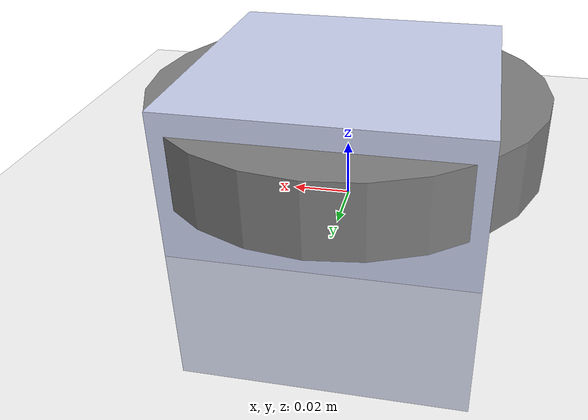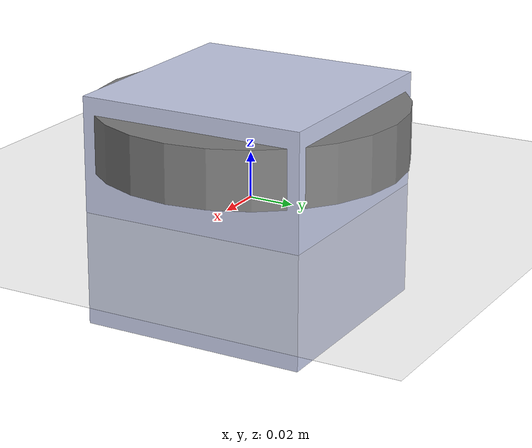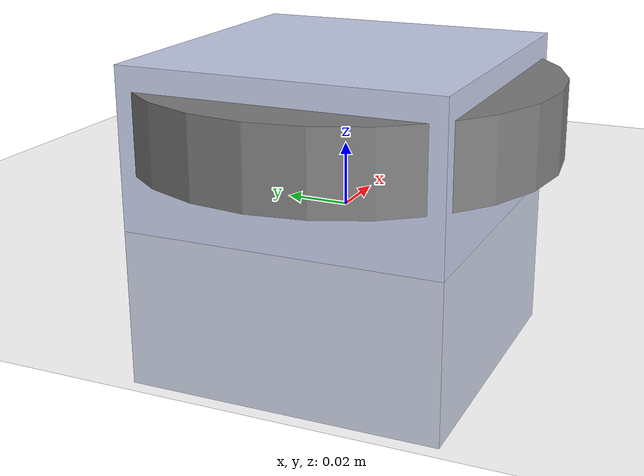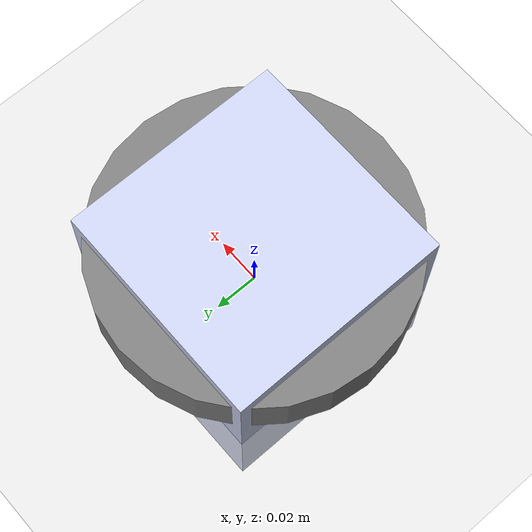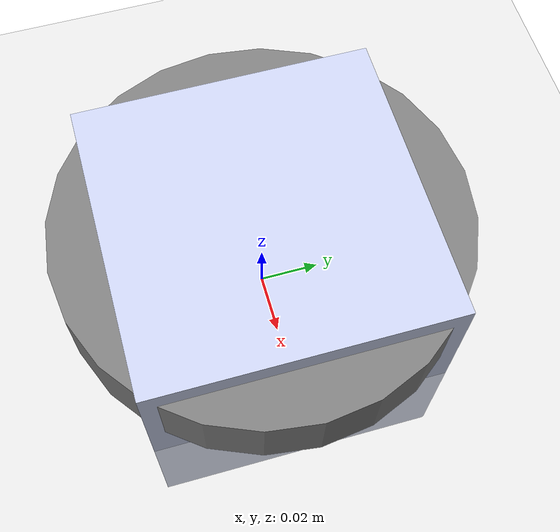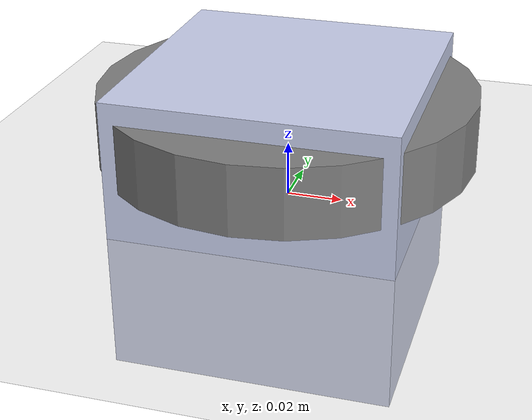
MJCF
<?xml version='1.0' encoding='utf-8'?>
<mujoco model="wl">
  <compiler angle="radian" meshdir="meshes/" texturedir="textures/" />
  <option timestep="0.001" gravity="0 0 -9.81" iterations="50" solver="Newton" />
  <asset />
  <worldbody>
    <geom name="ground" type="plane" size="10 10 0.1" rgba="0.8 0.8 0.8 1" friction="1 0.1 0.1" />
    <body name="base_link">
      <inertial mass="8.8" pos="-0.0076 0.0067 0.123056" quat="1 0 0 0" diaginertia="0.326092 0.229526 0.220537" />
      <geom name="base_link_visual" pos="0 0 0" type="box" size="0.05 0.05 0.05" rgba="0.79216 0.81961 0.93333 1" />
      <geom name="base_link_collision" pos="0 0 0" type="box" size="0.05 0.05 0.05" />
      <joint name="lf0_Joint" type="hinge" axis="0 0 1" range="-0.3363 1.3479" pos="0.054 0.1705 0.131" />
      <body name="lf0_Link">
        <inertial mass="0.16" pos="0.05976637 -0.00048182 0.01198236" quat="1 0 0 0" diaginertia="0.00006424 0.00116066 0.00117029" />
        <geom name="lf0_Link_visual" pos="0 0 0" type="box" size="0.05 0.05 0.05" rgba="0.792156862745098 0.819607843137255 0.933333333333333 1" />
        <geom name="lf0_Link_collision" pos="0 0 0" type="box" size="0.05 0.05 0.05" />
        <joint name="lf1_Joint" type="hinge" axis="0 0 1" range="-1.0 1.25" pos="0.15 -0.00010199 0.0205" />
        <body name="lf1_Link">
          <inertial mass="0.36" pos="-0.00032544 0.15899848 0.00798168" quat="1 0 0 0" diaginertia="0.01248770 0.00011869 0.01251325" />
          <geom name="lf1_Link_visual" pos="0 0 0" type="box" size="0.05 0.05 0.05" rgba="0.792156862745098 0.819607843137255 0.933333333333333 1" />
          <geom name="lf1_Link_collision" pos="0 0 0" type="box" size="0.05 0.05 0.05" />
          <joint name="l_wheel_Joint" type="hinge" axis="0 0 1" range="-3.14 3.14" pos="1.857E-05 0.25 0.0275" />
          <body name="l_wheel_Link">
            <inertial mass="1.22" pos="-0.00004507 -0.00038447 0.02376028" quat="1 0 0 0" diaginertia="0.00174370 0.00176013 0.00173973" />
            <geom name="l_wheel_Link_visual" pos="0 0 0" type="box" size="0.05 0.05 0.05" rgba="0.792156862745098 0.819607843137255 0.933333333333333 1" />
            <geom name="l_wheel_Link_collision" pos="0 0 0.03" type="cylinder" size="0.0675 0.0125" />
          </body>
        </body>
      </body>
      <joint name="rf0_Joint" type="hinge" axis="0 0 1" range="-1.3479 0.3363" pos="0.054 -0.1705 0.131" />
      <body name="rf0_Link">
        <inertial mass="0.16" pos="0.05976637 -0.00048182 0.01198236" quat="1 0 0 0" diaginertia="0.00006424 0.00116066 0.00117029" />
        <geom name="rf0_Link_visual" pos="0 0 0" type="box" size="0.05 0.05 0.05" rgba="0.792156862745098 0.819607843137255 0.933333333333333 1" />
        <geom name="rf0_Link_collision" pos="0 0 0" type="box" size="0.05 0.05 0.05" />
        <joint name="rf1_Joint" type="hinge" axis="0 0 1" range="-1.25 1.0" pos="0.15 9.5536E-05 0.0205" />
        <body name="rf1_Link">
          <inertial mass="0.36" pos="0.00032544 -0.15899848 0.00798168" quat="1 0 0 0" diaginertia="0.01248770 0.00011869 0.01251325" />
          <geom name="rf1_Link_visual" pos="0 0 0" type="box" size="0.05 0.05 0.05" rgba="0.792156862745098 0.819607843137255 0.933333333333333 1" />
          <geom name="rf1_Link_collision" pos="0 0 0" type="box" size="0.05 0.05 0.05" />
          <joint name="r_wheel_Joint" type="hinge" axis="0 0 1" range="-3.14 3.14" pos="1.5909E-05 -0.25 0.0275" />
          <body name="r_wheel_Link">
            <inertial mass="1.22" pos="0.00038403 0.00004865 0.02376028" quat="1 0 0 0" diaginertia="0.00176009 0.00174374 0.00173973" />
            <geom name="r_wheel_Link_visual" pos="0 0 0" type="box" size="0.05 0.05 0.05" rgba="0.792156862745098 0.819607843137255 0.933333333333333 1" />
            <geom name="r_wheel_Link_collision" pos="0 0 0.03" type="cylinder" size="0.0675 0.0125" />
          </body>
        </body>
      </body>
    </body>
  </worldbody>
  <actuator>
    <motor name="lf0_Joint_motor" joint="lf0_Joint" gear="1" ctrllimited="true" ctrlrange="-10 10" />
    <motor name="lf1_Joint_motor" joint="lf1_Joint" gear="1" ctrllimited="true" ctrlrange="-10 10" />
    <motor name="l_wheel_Joint_motor" joint="l_wheel_Joint" gear="1" ctrllimited="true" ctrlrange="-10 10" />
    <motor name="rf0_Joint_motor" joint="rf0_Joint" gear="1" ctrllimited="true" ctrlrange="-10 10" />
    <motor name="rf1_Joint_motor" joint="rf1_Joint" gear="1" ctrllimited="true" ctrlrange="-10 10" />
    <motor name="r_wheel_Joint_motor" joint="r_wheel_Joint" gear="1" ctrllimited="true" ctrlrange="-10 10" />
  </actuator>
</mujoco>
